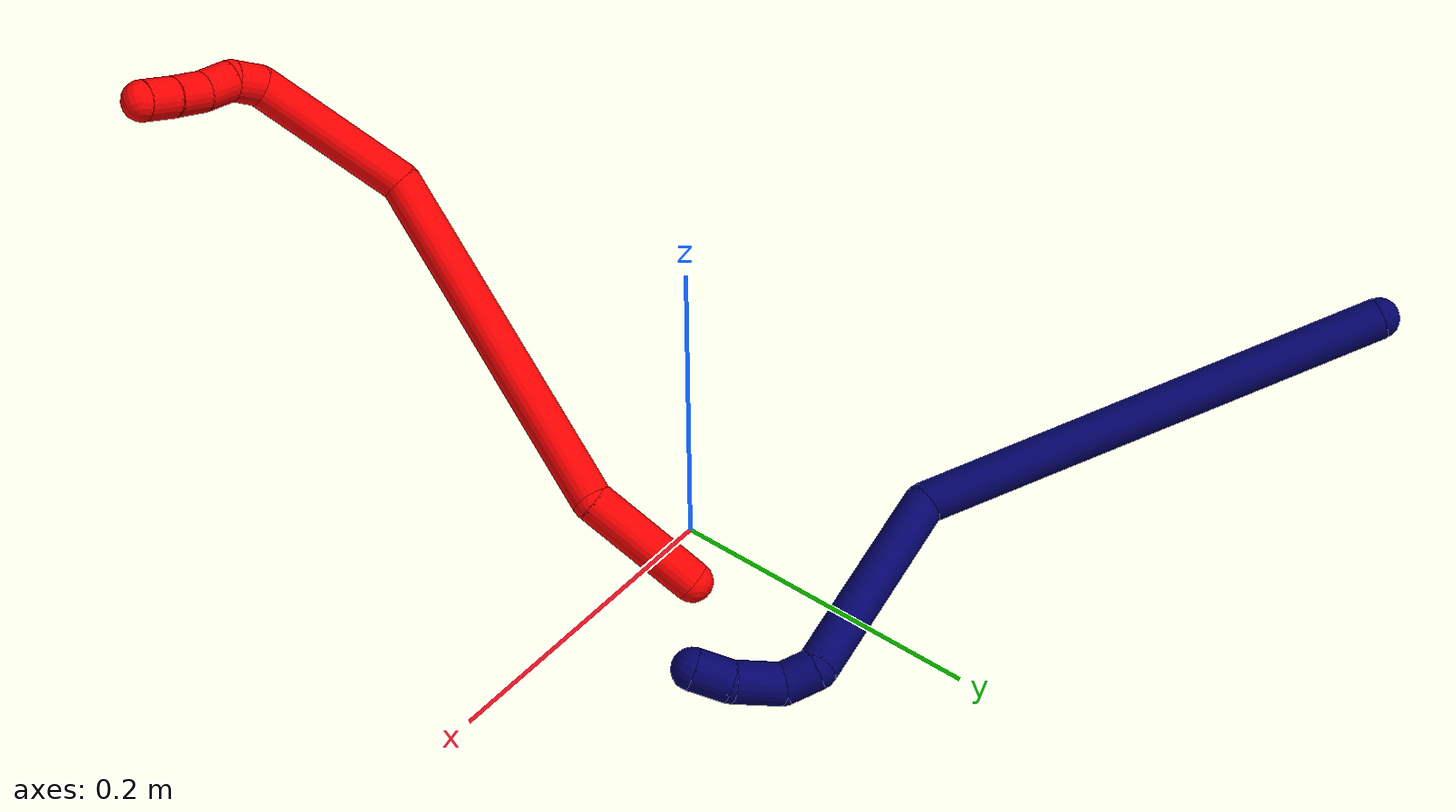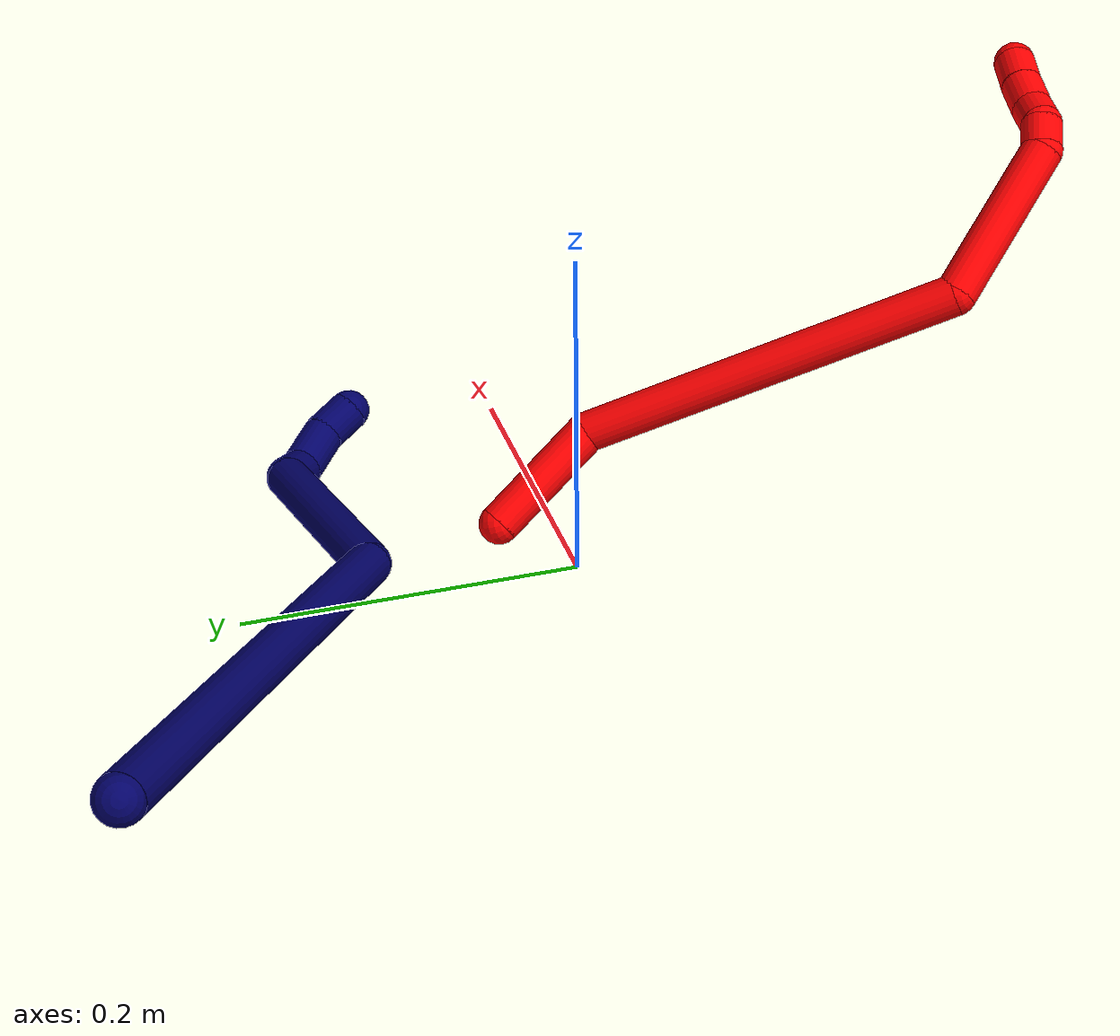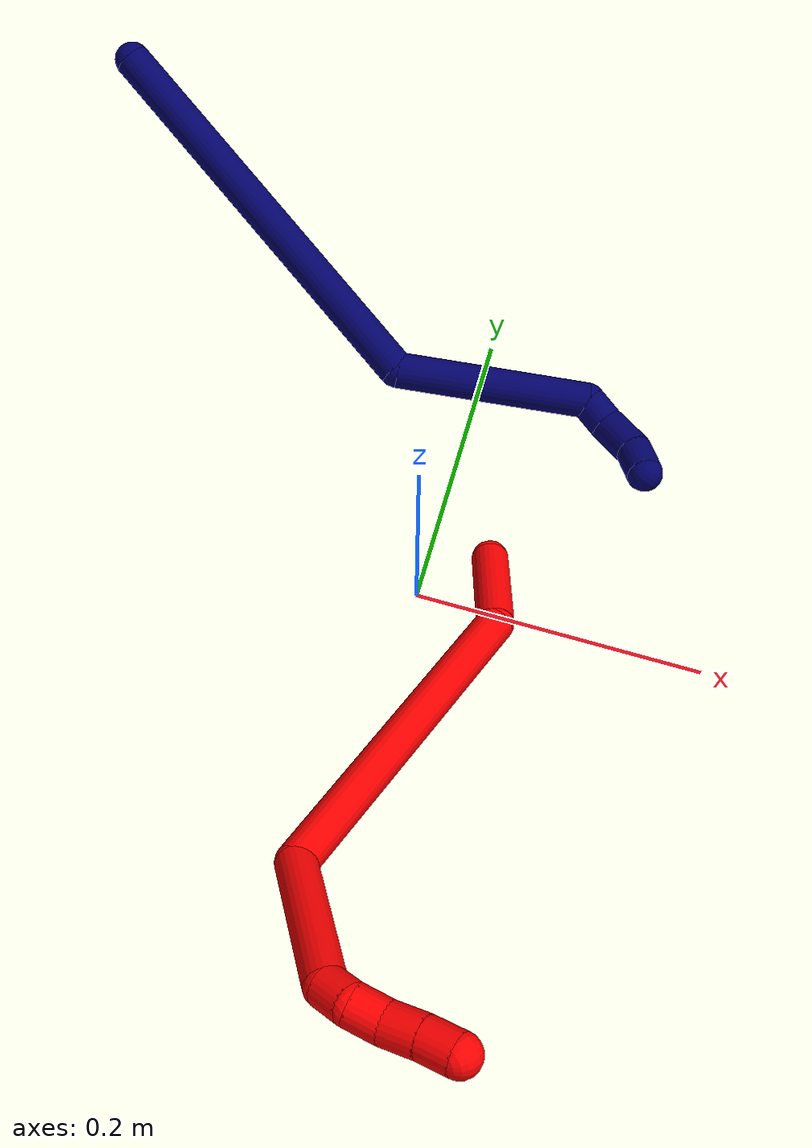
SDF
<sdf version="1.7">
 <world name="default">
  <model name="photoneo_s_sensor">
   <static>1</static>
   <pose>0 0 2 1.57079 1.57079 3.14159</pose>
   <link name="link">
    <inertial><mass>0.1</mass></inertial>
    <sensor name="sensor" type="depth">
     <update_rate>30</update_rate>
     <camera>
      <horizontal_fov>1.22</horizontal_fov>
      <image><width>1920</width><height>1200</height><format>B8G8R8</format></image>
      <clip><near>0.1</near><far>4</far></clip>
      <depth_camera><output>points</output></depth_camera>
     </camera>
     <plugin name="camera_plugin" filename="libgazebo_ros_depth_camera.so">
      <baseline>0.2</baseline>
      <alwaysOn>1</alwaysOn>
      <updateRate>0.0</updateRate>
      <cameraName>camera_ir</cameraName>
      <imageTopicName>/camera/color/image_raw</imageTopicName>
      <cameraInfoTopicName>/camera/color/camera_info</cameraInfoTopicName>
      <depthImageTopicName>/camera/depth/image_raw</depthImageTopicName>
      <depthImageCameraInfoTopicName>/camera/depth/camera_info</depthImageCameraInfoTopicName>
      <pointCloudTopicName>/camera/depth/points</pointCloudTopicName>
      <frameName>fr_optical</frameName>
      <pointCloudCutoff>0.1</pointCloudCutoff>
      <pointCloudCutoffMax>2.0</pointCloudCutoffMax>
      <distortionK1>0</distortionK1>
      <distortionK2>0</distortionK2>
      <distortionK3>0</distortionK3>
      <distortionT1>0</distortionT1>
      <distortionT2>0</distortionT2>
      <CxPrime>0</CxPrime>
      <Cx>0</Cx>
      <Cy>0</Cy>
      <focalLength>0</focalLength>
      <hackBaseline>0</hackBaseline>
     </plugin>
    </sensor>
   </link>
  </model>
  <model name="bin">
   <static>1</static>
   <link name="bottom">
    <collision name="collision-bottom">
     <pose>0 0 -0.01 0 -0 0</pose>
     <geometry><box><size>0.8 0.6 0.02</size></box></geometry>
     <surface>
      <friction><ode><mu>100</mu><mu2>100</mu2></ode></friction>
      <contact><collide_bitmask>65535</collide_bitmask></contact>
     </surface>
    </collision>
   </link>
   <link name="west_wall">
    <collision name="collision-west_wall">
     <pose>-0.41 0 0.1 0 -0 0</pose>
     <geometry><box><size>0.02 0.6 0.2</size></box></geometry>
     <surface>
      <friction><ode><mu>100</mu><mu2>100</mu2></ode></friction>
      <contact><collide_bitmask>65535</collide_bitmask></contact>
     </surface>
    </collision>
   </link>
   <link name="east_wall">
    <collision name="collision-east_wall">
     <pose>0.41 0 0.1 0 -0 0</pose>
     <geometry><box><size>0.02 0.6 0.2</size></box></geometry>
     <surface>
      <friction><ode><mu>100</mu><mu2>100</mu2></ode></friction>
      <contact><collide_bitmask>65535</collide_bitmask></contact>
     </surface>
    </collision>
   </link>
   <link name="south_wall">
    <collision name="collision-south_wall">
     <pose>0 -0.31 0.1 0 -0 0</pose>
     <geometry><box><size>0.8 0.02 0.2</size></box></geometry>
     <surface>
      <friction><ode><mu>100</mu><mu2>100</mu2></ode></friction>
      <contact><collide_bitmask>65535</collide_bitmask></contact>
     </surface>
    </collision>
   </link>
   <link name="north_wall">
    <collision name="collision-north_wall">
     <pose>0 0.31 0.1 0 -0 0</pose>
     <geometry><box><size>0.8 0.02 0.2</size></box></geometry>
     <surface>
      <friction><ode><mu>100</mu><mu2>100</mu2></ode></friction>
      <contact><collide_bitmask>65535</collide_bitmask></contact>
     </surface>
    </collision>
   </link>
  </model>
  <model name="2">
   <static>0</static>
   <link name="2">
    <collision name="collision-cylinder-e_1_1_4">
     <pose>0.004676 -0.029436 0.024141 0.883897 0.122222 0.057887</pose>
     <geometry><cylinder><radius>0.0125</radius><length>0.07671</length></cylinder></geometry>
     <surface>
      <friction><ode><mu>1.16</mu><mu2>1.16</mu2><slip1>0</slip1><slip2>0</slip2></ode></friction>
      <contact><ode><kp>1e+06</kp><kd>1</kd><max_vel>0</max_vel><min_depth>0.001</min_depth></ode></contact>
     </surface>
    </collision>
    <visual name="visual-cylinder-e_1_1_4">
     <pose>0.004676 -0.029436 0.024141 0.883897 0.122222 0.057887</pose>
     <geometry><cylinder><radius>0.0125</radius><length>0.07671</length></cylinder></geometry>
     <material><ambient>1 0 0 1</ambient></material>
    </visual>
    <collision name="collision-cylinder-e_2_4_5">
     <pose>0.003218 -0.099518 0.158414 0.353568 -0.052208 -0.009329</pose>
     <geometry><cylinder><radius>0.0125</radius><length>0.235107</length></cylinder></geometry>
     <surface>
      <friction><ode><mu>1.16</mu><mu2>1.16</mu2><slip1>0</slip1><slip2>0</slip2></ode></friction>
      <contact><ode><kp>1e+06</kp><kd>1</kd><max_vel>0</max_vel><min_depth>0.001</min_depth></ode></contact>
     </surface>
    </collision>
    <visual name="visual-cylinder-e_2_4_5">
     <pose>0.003218 -0.099518 0.158414 0.353568 -0.052208 -0.009329</pose>
     <geometry><cylinder><radius>0.0125</radius><length>0.235107</length></cylinder></geometry>
     <material><ambient>1 0 0 1</ambient></material>
    </visual>
    <collision name="collision-cylinder-e_3_5_6">
     <pose>0.008813 -0.184766 0.292926 1.07055 0.226798 0.134871</pose>
     <geometry><cylinder><radius>0.0125</radius><length>0.10433</length></cylinder></geometry>
     <surface>
      <friction><ode><mu>1.16</mu><mu2>1.16</mu2><slip1>0</slip1><slip2>0</slip2></ode></friction>
      <contact><ode><kp>1e+06</kp><kd>1</kd><max_vel>0</max_vel><min_depth>0.001</min_depth></ode></contact>
     </surface>
    </collision>
    <visual name="visual-cylinder-e_3_5_6">
     <pose>0.008813 -0.184766 0.292926 1.07055 0.226798 0.134871</pose>
     <geometry><cylinder><radius>0.0125</radius><length>0.10433</length></cylinder></geometry>
     <material><ambient>1 0 0 1</ambient></material>
    </visual>
    <collision name="collision-cylinder-e_4_6_7">
     <pose>0.023185 -0.23901 0.316759 1.62744 0.26705 0.282421</pose>
     <geometry><cylinder><radius>0.0125</radius><length>0.020027</length></cylinder></geometry>
     <surface>
      <friction><ode><mu>1.16</mu><mu2>1.16</mu2><slip1>0</slip1><slip2>0</slip2></ode></friction>
      <contact><ode><kp>1e+06</kp><kd>1</kd><max_vel>0</max_vel><min_depth>0.001</min_depth></ode></contact>
     </surface>
    </collision>
    <visual name="visual-cylinder-e_4_6_7">
     <pose>0.023185 -0.23901 0.316759 1.62744 0.26705 0.282421</pose>
     <geometry><cylinder><radius>0.0125</radius><length>0.020027</length></cylinder></geometry>
     <material><ambient>1 0 0 1</ambient></material>
    </visual>
    <collision name="collision-cylinder-e_5_7_8">
     <pose>0.025333 -0.257848 0.311982 2.00203 -0.04885 -0.076227</pose>
     <geometry><cylinder><radius>0.0125</radius><length>0.020268</length></cylinder></geometry>
     <surface>
      <friction><ode><mu>1.16</mu><mu2>1.16</mu2><slip1>0</slip1><slip2>0</slip2></ode></friction>
      <contact><ode><kp>1e+06</kp><kd>1</kd><max_vel>0</max_vel><min_depth>0.001</min_depth></ode></contact>
     </surface>
    </collision>
    <visual name="visual-cylinder-e_5_7_8">
     <pose>0.025333 -0.257848 0.311982 2.00203 -0.04885 -0.076227</pose>
     <geometry><cylinder><radius>0.0125</radius><length>0.020268</length></cylinder></geometry>
     <material><ambient>1 0 0 1</ambient></material>
    </visual>
    <collision name="collision-cylinder-e_6_8_9">
     <pose>0.027269 -0.277249 0.303689 1.94955 0.217781 0.319589</pose>
     <geometry><cylinder><radius>0.0125</radius><length>0.022498</length></cylinder></geometry>
     <surface>
      <friction><ode><mu>1.16</mu><mu2>1.16</mu2><slip1>0</slip1><slip2>0</slip2></ode></friction>
      <contact><ode><kp>1e+06</kp><kd>1</kd><max_vel>0</max_vel><min_depth>0.001</min_depth></ode></contact>
     </surface>
    </collision>
    <visual name="visual-cylinder-e_6_8_9">
     <pose>0.027269 -0.277249 0.303689 1.94955 0.217781 0.319589</pose>
     <geometry><cylinder><radius>0.0125</radius><length>0.022498</length></cylinder></geometry>
     <material><ambient>1 0 0 1</ambient></material>
    </visual>
    <collision name="collision-cylinder-e_7_9_2">
     <pose>0.031619 -0.297332 0.29653 1.8747 0.183357 0.249072</pose>
     <geometry><cylinder><radius>0.0125</radius><length>0.021059</length></cylinder></geometry>
     <surface>
      <friction><ode><mu>1.16</mu><mu2>1.16</mu2><slip1>0</slip1><slip2>0</slip2></ode></friction>
      <contact><ode><kp>1e+06</kp><kd>1</kd><max_vel>0</max_vel><min_depth>0.001</min_depth></ode></contact>
     </surface>
    </collision>
    <visual name="visual-cylinder-e_7_9_2">
     <pose>0.031619 -0.297332 0.29653 1.8747 0.183357 0.249072</pose>
     <geometry><cylinder><radius>0.0125</radius><length>0.021059</length></cylinder></geometry>
     <material><ambient>1 0 0 1</ambient></material>
    </visual>
    <collision name="collision-sphere-2">
     <pose>0.033539 -0.307211 0.293432 0 -0 0</pose>
     <geometry><sphere><radius>0.0125</radius></sphere></geometry>
     <surface>
      <friction><ode><mu>1.16</mu><mu2>1.16</mu2><slip1>0</slip1><slip2>0</slip2></ode></friction>
      <contact><ode><kp>1e+06</kp><kd>1</kd><max_vel>0</max_vel><min_depth>0.001</min_depth></ode></contact>
     </surface>
    </collision>
    <visual name="visual-sphere-2">
     <pose>0.033539 -0.307211 0.293432 0 -0 0</pose>
     <geometry><sphere><radius>0.0125</radius></sphere></geometry>
     <material><ambient>1 0 0 1</ambient></material>
    </visual>
    <collision name="collision-sphere-9">
     <pose>0.029699 -0.287454 0.299628 0 -0 0</pose>
     <geometry><sphere><radius>0.0125</radius></sphere></geometry>
     <surface>
      <friction><ode><mu>1.16</mu><mu2>1.16</mu2><slip1>0</slip1><slip2>0</slip2></ode></friction>
      <contact><ode><kp>1e+06</kp><kd>1</kd><max_vel>0</max_vel><min_depth>0.001</min_depth></ode></contact>
     </surface>
    </collision>
    <visual name="visual-sphere-9">
     <pose>0.029699 -0.287454 0.299628 0 -0 0</pose>
     <geometry><sphere><radius>0.0125</radius></sphere></geometry>
     <material><ambient>1 0 0 1</ambient></material>
    </visual>
    <collision name="collision-sphere-4">
     <pose>0.009352 -0.058871 0.048282 0 -0 0</pose>
     <geometry><sphere><radius>0.0125</radius></sphere></geometry>
     <surface>
      <friction><ode><mu>1.16</mu><mu2>1.16</mu2><slip1>0</slip1><slip2>0</slip2></ode></friction>
      <contact><ode><kp>1e+06</kp><kd>1</kd><max_vel>0</max_vel><min_depth>0.001</min_depth></ode></contact>
     </surface>
    </collision>
    <visual name="visual-sphere-4">
     <pose>0.009352 -0.058871 0.048282 0 -0 0</pose>
     <geometry><sphere><radius>0.0125</radius></sphere></geometry>
     <material><ambient>1 0 0 1</ambient></material>
    </visual>
    <collision name="collision-sphere-1">
     <geometry><sphere><radius>0.0125</radius></sphere></geometry>
     <surface>
      <friction><ode><mu>1.16</mu><mu2>1.16</mu2><slip1>0</slip1><slip2>0</slip2></ode></friction>
      <contact><ode><kp>1e+06</kp><kd>1</kd><max_vel>0</max_vel><min_depth>0.001</min_depth></ode></contact>
     </surface>
    </collision>
    <visual name="visual-sphere-1">
     <geometry><sphere><radius>0.0125</radius></sphere></geometry>
     <material><ambient>1 0 0 1</ambient></material>
    </visual>
    <collision name="collision-sphere-8">
     <pose>0.024838 -0.267044 0.307751 0 -0 0</pose>
     <geometry><sphere><radius>0.0125</radius></sphere></geometry>
     <surface>
      <friction><ode><mu>1.16</mu><mu2>1.16</mu2><slip1>0</slip1><slip2>0</slip2></ode></friction>
      <contact><ode><kp>1e+06</kp><kd>1</kd><max_vel>0</max_vel><min_depth>0.001</min_depth></ode></contact>
     </surface>
    </collision>
    <visual name="visual-sphere-8">
     <pose>0.024838 -0.267044 0.307751 0 -0 0</pose>
     <geometry><sphere><radius>0.0125</radius></sphere></geometry>
     <material><ambient>1 0 0 1</ambient></material>
    </visual>
    <collision name="collision-sphere-5">
     <pose>-0.002916 -0.140166 0.268546 0 -0 0</pose>
     <geometry><sphere><radius>0.0125</radius></sphere></geometry>
     <surface>
      <friction><ode><mu>1.16</mu><mu2>1.16</mu2><slip1>0</slip1><slip2>0</slip2></ode></friction>
      <contact><ode><kp>1e+06</kp><kd>1</kd><max_vel>0</max_vel><min_depth>0.001</min_depth></ode></contact>
     </surface>
    </collision>
    <visual name="visual-sphere-5">
     <pose>-0.002916 -0.140166 0.268546 0 -0 0</pose>
     <geometry><sphere><radius>0.0125</radius></sphere></geometry>
     <material><ambient>1 0 0 1</ambient></material>
    </visual>
    <collision name="collision-sphere-6">
     <pose>0.020543 -0.229367 0.317306 0 -0 0</pose>
     <geometry><sphere><radius>0.0125</radius></sphere></geometry>
     <surface>
      <friction><ode><mu>1.16</mu><mu2>1.16</mu2><slip1>0</slip1><slip2>0</slip2></ode></friction>
      <contact><ode><kp>1e+06</kp><kd>1</kd><max_vel>0</max_vel><min_depth>0.001</min_depth></ode></contact>
     </surface>
    </collision>
    <visual name="visual-sphere-6">
     <pose>0.020543 -0.229367 0.317306 0 -0 0</pose>
     <geometry><sphere><radius>0.0125</radius></sphere></geometry>
     <material><ambient>1 0 0 1</ambient></material>
    </visual>
    <collision name="collision-sphere-7">
     <pose>0.025828 -0.248653 0.316212 0 -0 0</pose>
     <geometry><sphere><radius>0.0125</radius></sphere></geometry>
     <surface>
      <friction><ode><mu>1.16</mu><mu2>1.16</mu2><slip1>0</slip1><slip2>0</slip2></ode></friction>
      <contact><ode><kp>1e+06</kp><kd>1</kd><max_vel>0</max_vel><min_depth>0.001</min_depth></ode></contact>
     </surface>
    </collision>
    <visual name="visual-sphere-7">
     <pose>0.025828 -0.248653 0.316212 0 -0 0</pose>
     <geometry><sphere><radius>0.0125</radius></sphere></geometry>
     <material><ambient>1 0 0 1</ambient></material>
    </visual>
    <inertial>
     <pose>0.008584 -0.134888 0.190803 0 -0 0</pose>
     <mass>0.5</mass>
     <inertia>
      <ixx>0.001241</ixx>
      <ixy>0</ixy>
      <ixz>0</ixz>
      <iyy>0.001081</iyy>
      <iyz>0</iyz>
      <izz>0.000551</izz>
     </inertia>
    </inertial>
   </link>
   <pose>0.042301 0.036052 0.011498 -0.685262 -1.07695 1.61655</pose>
  </model>
  <model name="7">
   <static>0</static>
   <link name="7">
    <collision name="collision-cylinder-e_1_1_4">
     <pose>-0.009045 -0.082725 -0.119591 2.53644 -0.062125 -0.198424</pose>
     <geometry><cylinder><radius>0.0125</radius><length>0.291391</length></cylinder></geometry>
     <surface>
      <friction><ode><mu>1.16</mu><mu2>1.16</mu2><slip1>0</slip1><slip2>0</slip2></ode></friction>
      <contact><ode><kp>1e+06</kp><kd>1</kd><max_vel>0</max_vel><min_depth>0.001</min_depth></ode></contact>
     </surface>
    </collision>
    <visual name="visual-cylinder-e_1_1_4">
     <pose>-0.009045 -0.082725 -0.119591 2.53644 -0.062125 -0.198424</pose>
     <geometry><cylinder><radius>0.0125</radius><length>0.291391</length></cylinder></geometry>
     <material><ambient>0.003922 0 0.403922 1</ambient></material>
    </visual>
    <collision name="collision-cylinder-e_2_4_5">
     <pose>0.014852 -0.173027 -0.297109 3.01151 0.513455 2.65521</pose>
     <geometry><cylinder><radius>0.0125</radius><length>0.134137</length></cylinder></geometry>
     <surface>
      <friction><ode><mu>1.16</mu><mu2>1.16</mu2><slip1>0</slip1><slip2>0</slip2></ode></friction>
      <contact><ode><kp>1e+06</kp><kd>1</kd><max_vel>0</max_vel><min_depth>0.001</min_depth></ode></contact>
     </surface>
    </collision>
    <visual name="visual-cylinder-e_2_4_5">
     <pose>0.014852 -0.173027 -0.297109 3.01151 0.513455 2.65521</pose>
     <geometry><cylinder><radius>0.0125</radius><length>0.134137</length></cylinder></geometry>
     <material><ambient>0.003922 0 0.403922 1</ambient></material>
    </visual>
    <collision name="collision-cylinder-e_3_5_6">
     <pose>0.046777 -0.186147 -0.363883 2.582 -0.097254 -0.335554</pose>
     <geometry><cylinder><radius>0.0125</radius><length>0.02098</length></cylinder></geometry>
     <surface>
      <friction><ode><mu>1.16</mu><mu2>1.16</mu2><slip1>0</slip1><slip2>0</slip2></ode></friction>
      <contact><ode><kp>1e+06</kp><kd>1</kd><max_vel>0</max_vel><min_depth>0.001</min_depth></ode></contact>
     </surface>
    </collision>
    <visual name="visual-cylinder-e_3_5_6">
     <pose>0.046777 -0.186147 -0.363883 2.582 -0.097254 -0.335554</pose>
     <geometry><cylinder><radius>0.0125</radius><length>0.02098</length></cylinder></geometry>
     <material><ambient>0.003922 0 0.403922 1</ambient></material>
    </visual>
    <collision name="collision-cylinder-e_4_6_7">
     <pose>0.048288 -0.204859 -0.380005 2.07542 0.166559 0.281058</pose>
     <geometry><cylinder><radius>0.0125</radius><length>0.030511</length></cylinder></geometry>
     <surface>
      <friction><ode><mu>1.16</mu><mu2>1.16</mu2><slip1>0</slip1><slip2>0</slip2></ode></friction>
      <contact><ode><kp>1e+06</kp><kd>1</kd><max_vel>0</max_vel><min_depth>0.001</min_depth></ode></contact>
     </surface>
    </collision>
    <visual name="visual-cylinder-e_4_6_7">
     <pose>0.048288 -0.204859 -0.380005 2.07542 0.166559 0.281058</pose>
     <geometry><cylinder><radius>0.0125</radius><length>0.030511</length></cylinder></geometry>
     <material><ambient>0.003922 0 0.403922 1</ambient></material>
    </visual>
    <collision name="collision-cylinder-e_5_7_2">
     <pose>0.050225 -0.229126 -0.390194 1.82772 -0.051555 -0.06684</pose>
     <geometry><cylinder><radius>0.0125</radius><length>0.022981</length></cylinder></geometry>
     <surface>
      <friction><ode><mu>1.16</mu><mu2>1.16</mu2><slip1>0</slip1><slip2>0</slip2></ode></friction>
      <contact><ode><kp>1e+06</kp><kd>1</kd><max_vel>0</max_vel><min_depth>0.001</min_depth></ode></contact>
     </surface>
    </collision>
    <visual name="visual-cylinder-e_5_7_2">
     <pose>0.050225 -0.229126 -0.390194 1.82772 -0.051555 -0.06684</pose>
     <geometry><cylinder><radius>0.0125</radius><length>0.022981</length></cylinder></geometry>
     <material><ambient>0.003922 0 0.403922 1</ambient></material>
    </visual>
    <collision name="collision-sphere-2">
     <pose>0.049633 -0.240225 -0.39311 0 -0 0</pose>
     <geometry><sphere><radius>0.0125</radius></sphere></geometry>
     <surface>
      <friction><ode><mu>1.16</mu><mu2>1.16</mu2><slip1>0</slip1><slip2>0</slip2></ode></friction>
      <contact><ode><kp>1e+06</kp><kd>1</kd><max_vel>0</max_vel><min_depth>0.001</min_depth></ode></contact>
     </surface>
    </collision>
    <visual name="visual-sphere-2">
     <pose>0.049633 -0.240225 -0.39311 0 -0 0</pose>
     <geometry><sphere><radius>0.0125</radius></sphere></geometry>
     <material><ambient>0.003922 0 0.403922 1</ambient></material>
    </visual>
    <collision name="collision-sphere-7">
     <pose>0.050817 -0.218028 -0.387278 0 -0 0</pose>
     <geometry><sphere><radius>0.0125</radius></sphere></geometry>
     <surface>
      <friction><ode><mu>1.16</mu><mu2>1.16</mu2><slip1>0</slip1><slip2>0</slip2></ode></friction>
      <contact><ode><kp>1e+06</kp><kd>1</kd><max_vel>0</max_vel><min_depth>0.001</min_depth></ode></contact>
     </surface>
    </collision>
    <visual name="visual-sphere-7">
     <pose>0.050817 -0.218028 -0.387278 0 -0 0</pose>
     <geometry><sphere><radius>0.0125</radius></sphere></geometry>
     <material><ambient>0.003922 0 0.403922 1</ambient></material>
    </visual>
    <collision name="collision-sphere-6">
     <pose>0.045759 -0.19169 -0.372731 0 -0 0</pose>
     <geometry><sphere><radius>0.0125</radius></sphere></geometry>
     <surface>
      <friction><ode><mu>1.16</mu><mu2>1.16</mu2><slip1>0</slip1><slip2>0</slip2></ode></friction>
      <contact><ode><kp>1e+06</kp><kd>1</kd><max_vel>0</max_vel><min_depth>0.001</min_depth></ode></contact>
     </surface>
    </collision>
    <visual name="visual-sphere-6">
     <pose>0.045759 -0.19169 -0.372731 0 -0 0</pose>
     <geometry><sphere><radius>0.0125</radius></sphere></geometry>
     <material><ambient>0.003922 0 0.403922 1</ambient></material>
    </visual>
    <collision name="collision-sphere-5">
     <pose>0.047796 -0.180605 -0.355035 0 -0 0</pose>
     <geometry><sphere><radius>0.0125</radius></sphere></geometry>
     <surface>
      <friction><ode><mu>1.16</mu><mu2>1.16</mu2><slip1>0</slip1><slip2>0</slip2></ode></friction>
      <contact><ode><kp>1e+06</kp><kd>1</kd><max_vel>0</max_vel><min_depth>0.001</min_depth></ode></contact>
     </surface>
    </collision>
    <visual name="visual-sphere-5">
     <pose>0.047796 -0.180605 -0.355035 0 -0 0</pose>
     <geometry><sphere><radius>0.0125</radius></sphere></geometry>
     <material><ambient>0.003922 0 0.403922 1</ambient></material>
    </visual>
    <collision name="collision-sphere-1">
     <geometry><sphere><radius>0.0125</radius></sphere></geometry>
     <surface>
      <friction><ode><mu>1.16</mu><mu2>1.16</mu2><slip1>0</slip1><slip2>0</slip2></ode></friction>
      <contact><ode><kp>1e+06</kp><kd>1</kd><max_vel>0</max_vel><min_depth>0.001</min_depth></ode></contact>
     </surface>
    </collision>
    <visual name="visual-sphere-1">
     <geometry><sphere><radius>0.0125</radius></sphere></geometry>
     <material><ambient>0.003922 0 0.403922 1</ambient></material>
    </visual>
    <collision name="collision-sphere-4">
     <pose>-0.018091 -0.16545 -0.239182 0 -0 0</pose>
     <geometry><sphere><radius>0.0125</radius></sphere></geometry>
     <surface>
      <friction><ode><mu>1.16</mu><mu2>1.16</mu2><slip1>0</slip1><slip2>0</slip2></ode></friction>
      <contact><ode><kp>1e+06</kp><kd>1</kd><max_vel>0</max_vel><min_depth>0.001</min_depth></ode></contact>
     </surface>
    </collision>
    <visual name="visual-sphere-4">
     <pose>-0.018091 -0.16545 -0.239182 0 -0 0</pose>
     <geometry><sphere><radius>0.0125</radius></sphere></geometry>
     <material><ambient>0.003922 0 0.403922 1</ambient></material>
    </visual>
    <inertial>
     <pose>0.005931 -0.125472 -0.205793 0 -0 0</pose>
     <mass>0.5</mass>
     <inertia>
      <ixx>0.001557</ixx>
      <ixy>0</ixy>
      <ixz>0</ixz>
      <iyy>-0.001816</iyy>
      <iyz>0</iyz>
      <izz>0.001203</izz>
     </inertia>
    </inertial>
   </link>
   <pose>-0.291778 0.287783 0.124378 -0.736001 -0.685445 0.900051</pose>
  </model>
 </world>
</sdf>
